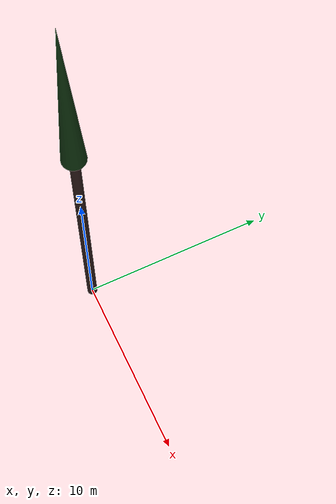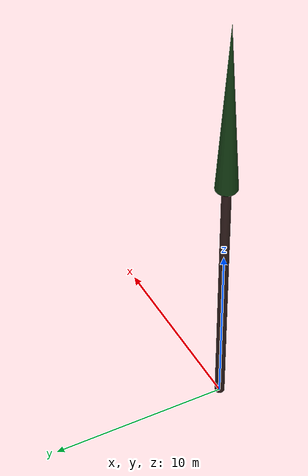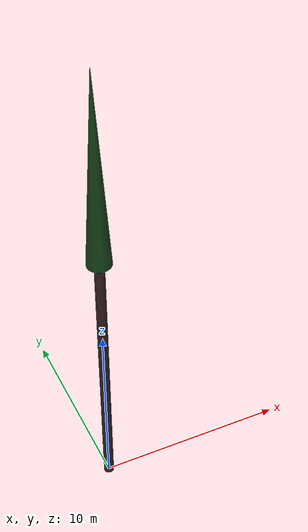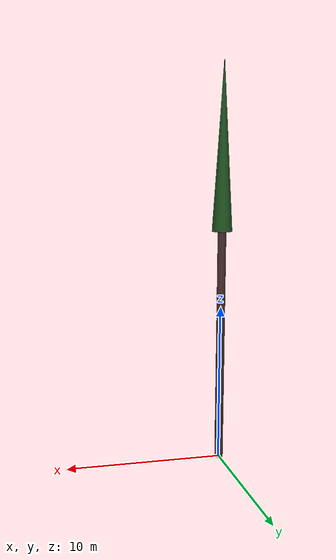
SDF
<?xml version="1.0" ?>
<sdf version="1.10">
  <model name="cypres_provence_04">
    <static>true</static>

    <!-- Tronc -->
    <link name="trunk">
      <pose>0 0 7.443409994919733 0 0 0</pose>
      <visual name="trunk_visual">
        <geometry>
          <cylinder>
            <radius>0.26272993767183395</radius>
            <length>14.886819989839466</length>
          </cylinder>
        </geometry>
        <material>
          <ambient>0.24 0.15 0.14 1</ambient>
          <diffuse>0.24 0.15 0.14 1</diffuse>
          <specular>0.1 0.1 0.1 1</specular>
        </material>
      </visual>
      <collision name="trunk_collision">
        <geometry>
          <cylinder>
            <radius>0.26272993767183395</radius>
            <length>14.886819989839466</length>
          </cylinder>
        </geometry>
      </collision>
    </link>

    <!-- Feuillage -->
    <link name="crown">
      <pose>0 0 20.19606604014349 0 0 0</pose>
      <visual name="crown_visual">
        <geometry>
          <cone>
              <radius>0.6299213305908417</radius>
              <length>10.618492100608044</length>
            </cone>
        </geometry>
        <material>
          <ambient>0.10 0.29 0.10 1</ambient>
          <diffuse>0.10 0.29 0.10 1</diffuse>
          <specular>0.1 0.1 0.1 1</specular>
        </material>
      </visual>
      <collision name="crown_collision">
        <geometry>
          <sphere>
            <radius>0.5039370644726734</radius>
          </sphere>
        </geometry>
      </collision>
    </link>

    <!-- Joint tronc-feuillage -->
    <joint name="trunk_crown_joint" type="fixed">
      <parent>trunk</parent>
      <child>crown</child>
    </joint>

  </model>
</sdf>
